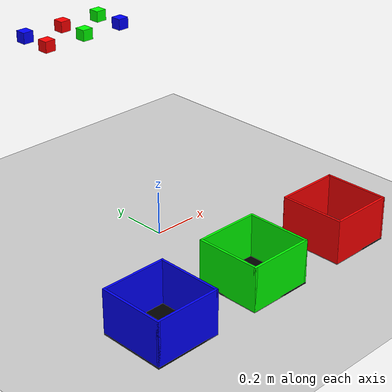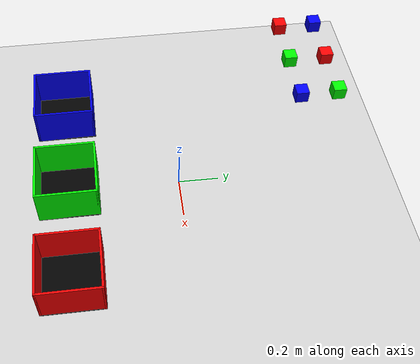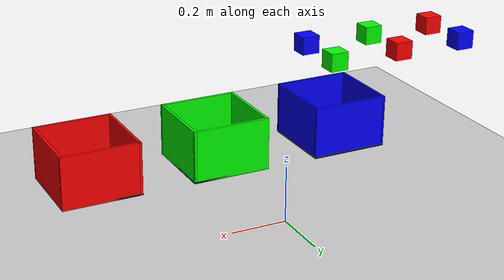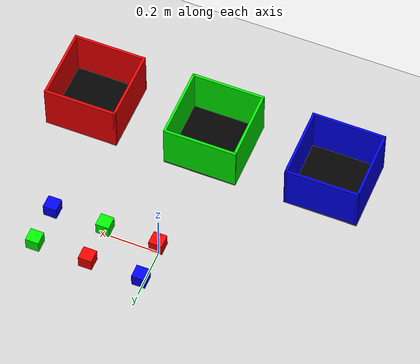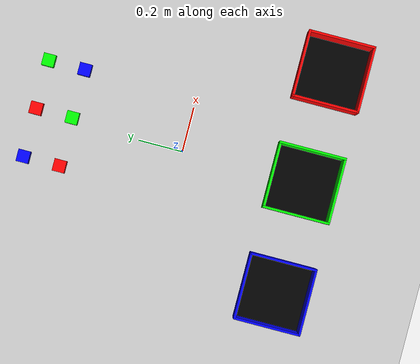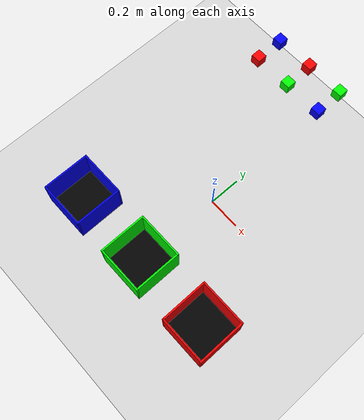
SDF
<sdf version="1.7">
 <world name="default">
  <light name="sun" type="directional">
   <pose>0 0 10 0 -0 0</pose>
   <diffuse>0.8 0.8 0.8 1</diffuse>
   <specular>0.2 0.2 0.2 1</specular>
   <attenuation>
    <range>1000</range>
    <constant>0.9</constant>
    <linear>0.01</linear>
    <quadratic>0.001</quadratic>
   </attenuation>
   <direction>-0.5 0.1 -0.9</direction>
   <spot><inner_angle>0</inner_angle><outer_angle>0</outer_angle><falloff>0</falloff></spot>
  </light>
  <model name="ground_plane">
   <static>1</static>
   <link name="link">
    <collision name="collision">
     <geometry><plane><normal>0 0 1</normal><size>100 100</size></plane></geometry>
     <surface>
      <contact><collide_bitmask>65535</collide_bitmask></contact>
      <friction><ode><mu>100</mu><mu2>50</mu2></ode></friction>
     </surface>
    </collision>
    <visual name="visual">
     <cast_shadows>0</cast_shadows>
     <geometry><plane><normal>0 0 1</normal><size>100 100</size></plane></geometry>
     <material>
      <script><uri>file://media/materials/scripts/gazebo.material</uri><name>Gazebo/Grey</name></script>
     </material>
    </visual>
   </link>
  </model>
  <gravity>0 0 -9.8</gravity>
  <magnetic_field>6e-06 2.3e-05 -4.2e-05</magnetic_field>
  <atmosphere type="adiabatic"/>
  <physics type="ode">
   <max_step_size>0.001</max_step_size>
   <real_time_factor>1</real_time_factor>
   <real_time_update_rate>1000</real_time_update_rate>
  </physics>
  <scene><ambient>0.4 0.4 0.4 1</ambient><background>0.7 0.7 0.7 1</background><shadows>1</shadows></scene>
  <spherical_coordinates>
   <surface_model>EARTH_WGS84</surface_model>
   <latitude_deg>0</latitude_deg>
   <longitude_deg>0</longitude_deg>
   <elevation>0</elevation>
   <heading_deg>0</heading_deg>
  </spherical_coordinates>
  <model name="cube_red">
   <link name="link">
    <collision name="collision">
     <geometry><box><size>0.05 0.05 0.05</size></box></geometry>
     <surface>
      <friction><ode><mu>1</mu><mu2>1</mu2><fdir1>0 0 0</fdir1><slip1>0</slip1><slip2>0</slip2></ode></friction>
      <contact><ode><kp>1e+06</kp><kd>1000</kd><max_vel>0.1</max_vel><min_depth>0.001</min_depth></ode></contact>
     </surface>
    </collision>
    <visual name="visual">
     <geometry><box><size>0.05 0.05 0.05</size></box></geometry>
     <material><ambient>1 0 0 1</ambient><diffuse>1 0 0 1</diffuse><specular>0.1 0.1 0.1 1</specular></material>
    </visual>
    <inertial>
     <mass>0.1</mass>
     <inertia><ixx>0.0001</ixx><ixy>0</ixy><ixz>0</ixz><iyy>0.0001</iyy><iyz>0</iyz><izz>0.0001</izz></inertia>
    </inertial>
   </link>
   <pose>-0.2 0.45 0.799 0 -0 0</pose>
  </model>
  <model name="cube_blue">
   <link name="link">
    <collision name="collision">
     <geometry><box><size>0.05 0.05 0.05</size></box></geometry>
     <surface>
      <friction><ode><mu>1</mu><mu2>1</mu2><fdir1>0 0 0</fdir1><slip1>0</slip1><slip2>0</slip2></ode></friction>
      <contact><ode><kp>1e+06</kp><kd>1000</kd><max_vel>0.1</max_vel><min_depth>0.001</min_depth></ode></contact>
     </surface>
    </collision>
    <visual name="visual">
     <geometry><box><size>0.05 0.05 0.05</size></box></geometry>
     <material><ambient>0 0 1 1</ambient><diffuse>0 0 1 1</diffuse><specular>0.1 0.1 0.1 1</specular></material>
    </visual>
    <inertial>
     <mass>0.1</mass>
     <inertia><ixx>0.0001</ixx><ixy>0</ixy><ixz>0</ixz><iyy>0.0001</iyy><iyz>0</iyz><izz>0.0001</izz></inertia>
    </inertial>
   </link>
   <pose>0.2 0.45 0.799 0 -0 0</pose>
  </model>
  <model name="cube_green">
   <link name="link">
    <collision name="collision">
     <geometry><box><size>0.05 0.05 0.05</size></box></geometry>
     <surface>
      <friction><ode><mu>1</mu><mu2>1</mu2><fdir1>0 0 0</fdir1><slip1>0</slip1><slip2>0</slip2></ode></friction>
      <contact><ode><kp>1e+06</kp><kd>1000</kd><max_vel>0.1</max_vel><min_depth>0.001</min_depth></ode></contact>
     </surface>
    </collision>
    <visual name="visual">
     <geometry><box><size>0.05 0.05 0.05</size></box></geometry>
     <material><ambient>0 1 0 1</ambient><diffuse>0 1 0 1</diffuse><specular>0.1 0.1 0.1 1</specular></material>
    </visual>
    <inertial>
     <mass>0.1</mass>
     <inertia><ixx>0.0001</ixx><ixy>0</ixy><ixz>0</ixz><iyy>0.0001</iyy><iyz>0</iyz><izz>0.0001</izz></inertia>
    </inertial>
   </link>
   <pose>0 0.45 0.799 0 -0 0</pose>
  </model>
  <model name="cube_red1">
   <link name="link">
    <collision name="collision">
     <geometry><box><size>0.05 0.05 0.05</size></box></geometry>
     <surface>
      <friction><ode><mu>1</mu><mu2>1</mu2><fdir1>0 0 0</fdir1><slip1>0</slip1><slip2>0</slip2></ode></friction>
      <contact><ode><kp>1e+06</kp><kd>1000</kd><max_vel>0.1</max_vel><min_depth>0.001</min_depth></ode></contact>
     </surface>
    </collision>
    <visual name="visual">
     <geometry><box><size>0.05 0.05 0.05</size></box></geometry>
     <material><ambient>1 0 0 1</ambient><diffuse>1 0 0 1</diffuse><specular>0.1 0.1 0.1 1</specular></material>
    </visual>
    <inertial>
     <mass>0.1</mass>
     <inertia><ixx>0.0001</ixx><ixy>0</ixy><ixz>0</ixz><iyy>0.0001</iyy><iyz>0</iyz><izz>0.0001</izz></inertia>
    </inertial>
   </link>
   <pose>0 0.6 0.799 0 -0 0</pose>
  </model>
  <model name="cube_blue1">
   <link name="link">
    <collision name="collision">
     <geometry><box><size>0.05 0.05 0.05</size></box></geometry>
     <surface>
      <friction><ode><mu>1</mu><mu2>1</mu2><fdir1>0 0 0</fdir1><slip1>0</slip1><slip2>0</slip2></ode></friction>
      <contact><ode><kp>1e+06</kp><kd>1000</kd><max_vel>0.1</max_vel><min_depth>0.001</min_depth></ode></contact>
     </surface>
    </collision>
    <visual name="visual">
     <geometry><box><size>0.05 0.05 0.05</size></box></geometry>
     <material><ambient>0 0 1 1</ambient><diffuse>0 0 1 1</diffuse><specular>0.1 0.1 0.1 1</specular></material>
    </visual>
    <inertial>
     <mass>0.1</mass>
     <inertia><ixx>0.0001</ixx><ixy>0</ixy><ixz>0</ixz><iyy>0.0001</iyy><iyz>0</iyz><izz>0.0001</izz></inertia>
    </inertial>
   </link>
   <pose>-0.2 0.6 0.799 0 -0 0</pose>
  </model>
  <model name="cube_green1">
   <link name="link">
    <collision name="collision">
     <geometry><box><size>0.05 0.05 0.05</size></box></geometry>
     <surface>
      <friction><ode><mu>1</mu><mu2>1</mu2><fdir1>0 0 0</fdir1><slip1>0</slip1><slip2>0</slip2></ode></friction>
      <contact><ode><kp>1e+06</kp><kd>1000</kd><max_vel>0.1</max_vel><min_depth>0.001</min_depth></ode></contact>
     </surface>
    </collision>
    <visual name="visual">
     <geometry><box><size>0.05 0.05 0.05</size></box></geometry>
     <material><ambient>0 1 0 1</ambient><diffuse>0 1 0 1</diffuse><specular>0.1 0.1 0.1 1</specular></material>
    </visual>
    <inertial>
     <mass>0.1</mass>
     <inertia><ixx>0.0001</ixx><ixy>0</ixy><ixz>0</ixz><iyy>0.0001</iyy><iyz>0</iyz><izz>0.0001</izz></inertia>
    </inertial>
   </link>
   <pose>0.2 0.600007 0.799022 -0.000271 5e-06 0</pose>
  </model>
  <light name="user_directional_light_0" type="directional">
   <pose>-2.29486 -1.75282 1 0 -0 0</pose>
   <diffuse>0.5 0.5 0.5 1</diffuse>
   <specular>0.1 0.1 0.1 1</specular>
   <direction>0.1 0.1 -0.9</direction>
   <attenuation>
    <range>20</range>
    <constant>0.5</constant>
    <linear>0.01</linear>
    <quadratic>0.001</quadratic>
   </attenuation>
  </light>
  <model name="red_bin1">
   <static>1</static>
   <link name="bottom">
    <visual name="visual_bottom">
     <geometry><box><size>0.3 0.3 0.01</size></box></geometry>
     <material><ambient>0 0 0 1</ambient><diffuse>0 0 0 1</diffuse></material>
    </visual>
    <collision name="collision_bottom"><geometry><box><size>0.3 0.3 0.01</size></box></geometry></collision>
   </link>
   <link name="wall_front">
    <pose>0 0.145 0.1 0 -0 0</pose>
    <visual name="visual_wall_front">
     <geometry><box><size>0.3 0.01 0.2</size></box></geometry>
     <material><ambient>1 0 0 1</ambient><diffuse>1 0 0 1</diffuse></material>
    </visual>
    <collision name="collision_wall_front"><geometry><box><size>0.3 0.01 0.2</size></box></geometry></collision>
   </link>
   <link name="wall_back">
    <pose>0 -0.145 0.1 0 -0 0</pose>
    <visual name="visual_wall_back">
     <geometry><box><size>0.3 0.01 0.2</size></box></geometry>
     <material><ambient>1 0 0 1</ambient><diffuse>1 0 0 1</diffuse></material>
    </visual>
    <collision name="collision_wall_back"><geometry><box><size>0.3 0.01 0.2</size></box></geometry></collision>
   </link>
   <link name="wall_left">
    <pose>-0.145 0 0.1 0 -0 0</pose>
    <visual name="visual_wall_left">
     <geometry><box><size>0.01 0.3 0.2</size></box></geometry>
     <material><ambient>1 0 0 1</ambient><diffuse>1 0 0 1</diffuse></material>
    </visual>
    <collision name="collision_wall_left"><geometry><box><size>0.01 0.3 0.2</size></box></geometry></collision>
   </link>
   <link name="wall_right">
    <pose>0.145 0 0.1 0 -0 0</pose>
    <visual name="visual_wall_right">
     <geometry><box><size>0.01 0.3 0.2</size></box></geometry>
     <material><ambient>1 0 0 1</ambient><diffuse>1 0 0 1</diffuse></material>
    </visual>
    <collision name="collision_wall_right"><geometry><box><size>0.01 0.3 0.2</size></box></geometry></collision>
   </link>
   <pose>0.5 -0.55 0 0 -0 0</pose>
  </model>
  <light name="user_directional_light_1" type="directional">
   <pose>-2.27843 -0.756246 1 0 -0 0</pose>
   <diffuse>0.5 0.5 0.5 1</diffuse>
   <specular>0.1 0.1 0.1 1</specular>
   <direction>0.1 0.1 -0.9</direction>
   <attenuation>
    <range>20</range>
    <constant>0.5</constant>
    <linear>0.01</linear>
    <quadratic>0.001</quadratic>
   </attenuation>
  </light>
  <model name="blue_bin1">
   <static>1</static>
   <link name="bottom">
    <visual name="visual_bottom">
     <geometry><box><size>0.3 0.3 0.01</size></box></geometry>
     <material><ambient>0 0 0 1</ambient><diffuse>0 0 0 1</diffuse></material>
    </visual>
    <collision name="collision_bottom"><geometry><box><size>0.3 0.3 0.01</size></box></geometry></collision>
   </link>
   <link name="wall_front">
    <pose>0 0.145 0.1 0 -0 0</pose>
    <visual name="visual_wall_front">
     <geometry><box><size>0.3 0.01 0.2</size></box></geometry>
     <material><ambient>0 0 1 1</ambient><diffuse>0 0 1 1</diffuse></material>
    </visual>
    <collision name="collision_wall_front"><geometry><box><size>0.3 0.01 0.2</size></box></geometry></collision>
   </link>
   <link name="wall_back">
    <pose>0 -0.145 0.1 0 -0 0</pose>
    <visual name="visual_wall_back">
     <geometry><box><size>0.3 0.01 0.2</size></box></geometry>
     <material><ambient>0 0 1 1</ambient><diffuse>0 0 1 1</diffuse></material>
    </visual>
    <collision name="collision_wall_back"><geometry><box><size>0.3 0.01 0.2</size></box></geometry></collision>
   </link>
   <link name="wall_left">
    <pose>-0.145 0 0.1 0 -0 0</pose>
    <visual name="visual_wall_left">
     <geometry><box><size>0.01 0.3 0.2</size></box></geometry>
     <material><ambient>0 0 1 1</ambient><diffuse>0 0 1 1</diffuse></material>
    </visual>
    <collision name="collision_wall_left"><geometry><box><size>0.01 0.3 0.2</size></box></geometry></collision>
   </link>
   <link name="wall_right">
    <pose>0.145 0 0.1 0 -0 0</pose>
    <visual name="visual_wall_right">
     <geometry><box><size>0.01 0.3 0.2</size></box></geometry>
     <material><ambient>0 0 1 1</ambient><diffuse>0 0 1 1</diffuse></material>
    </visual>
    <collision name="collision_wall_right"><geometry><box><size>0.01 0.3 0.2</size></box></geometry></collision>
   </link>
   <pose>-0.5 -0.55 0 0 -0 0</pose>
  </model>
  <model name="green_bin1">
   <static>1</static>
   <link name="bottom">
    <visual name="visual_bottom">
     <geometry><box><size>0.3 0.3 0.01</size></box></geometry>
     <material><ambient>0 0 0 1</ambient><diffuse>0 0 0 1</diffuse></material>
    </visual>
    <collision name="collision_bottom"><geometry><box><size>0.3 0.3 0.01</size></box></geometry></collision>
   </link>
   <link name="wall_front">
    <pose>0 0.145 0.1 0 -0 0</pose>
    <visual name="visual_wall_front">
     <geometry><box><size>0.3 0.01 0.2</size></box></geometry>
     <material><ambient>0 1 0 1</ambient><diffuse>0 1 0 1</diffuse></material>
    </visual>
    <collision name="collision_wall_front"><geometry><box><size>0.3 0.01 0.2</size></box></geometry></collision>
   </link>
   <link name="wall_back">
    <pose>0 -0.145 0.1 0 -0 0</pose>
    <visual name="visual_wall_back">
     <geometry><box><size>0.3 0.01 0.2</size></box></geometry>
     <material><ambient>0 1 0 1</ambient><diffuse>0 1 0 1</diffuse></material>
    </visual>
    <collision name="collision_wall_back"><geometry><box><size>0.3 0.01 0.2</size></box></geometry></collision>
   </link>
   <link name="wall_left">
    <pose>-0.145 0 0.1 0 -0 0</pose>
    <visual name="visual_wall_left">
     <geometry><box><size>0.01 0.3 0.2</size></box></geometry>
     <material><ambient>0 1 0 1</ambient><diffuse>0 1 0 1</diffuse></material>
    </visual>
    <collision name="collision_wall_left"><geometry><box><size>0.01 0.3 0.2</size></box></geometry></collision>
   </link>
   <link name="wall_right">
    <pose>0.145 0 0.1 0 -0 0</pose>
    <visual name="visual_wall_right">
     <geometry><box><size>0.01 0.3 0.2</size></box></geometry>
     <material><ambient>0 1 0 1</ambient><diffuse>0 1 0 1</diffuse></material>
    </visual>
    <collision name="collision_wall_right"><geometry><box><size>0.01 0.3 0.2</size></box></geometry></collision>
   </link>
   <pose>0 -0.55 0 0 -0 0</pose>
  </model>
 </world>
</sdf>
